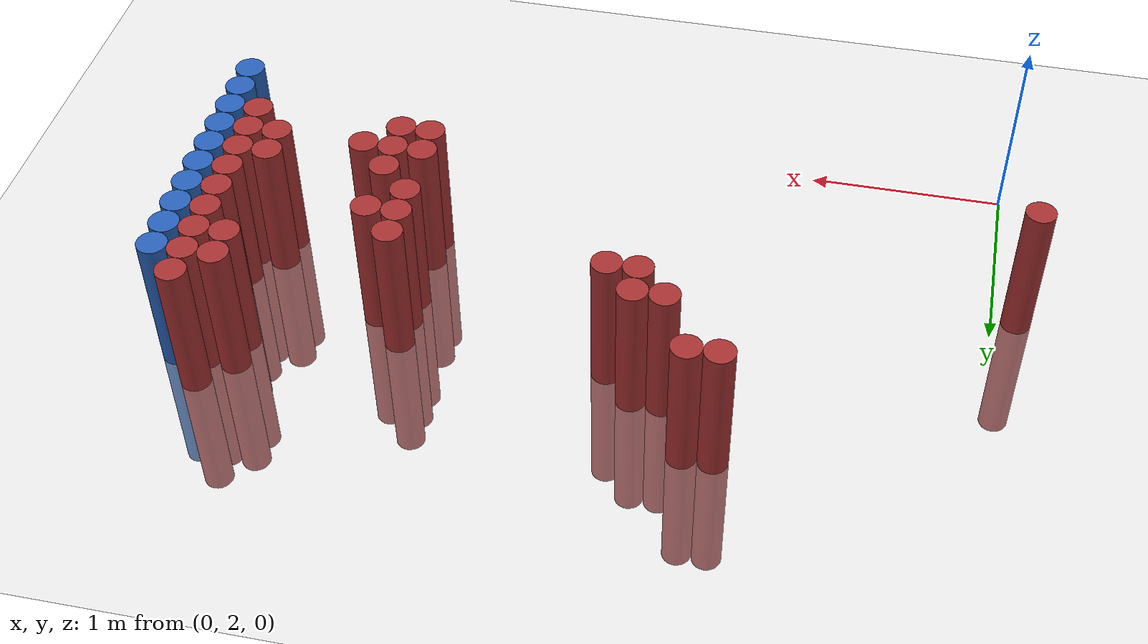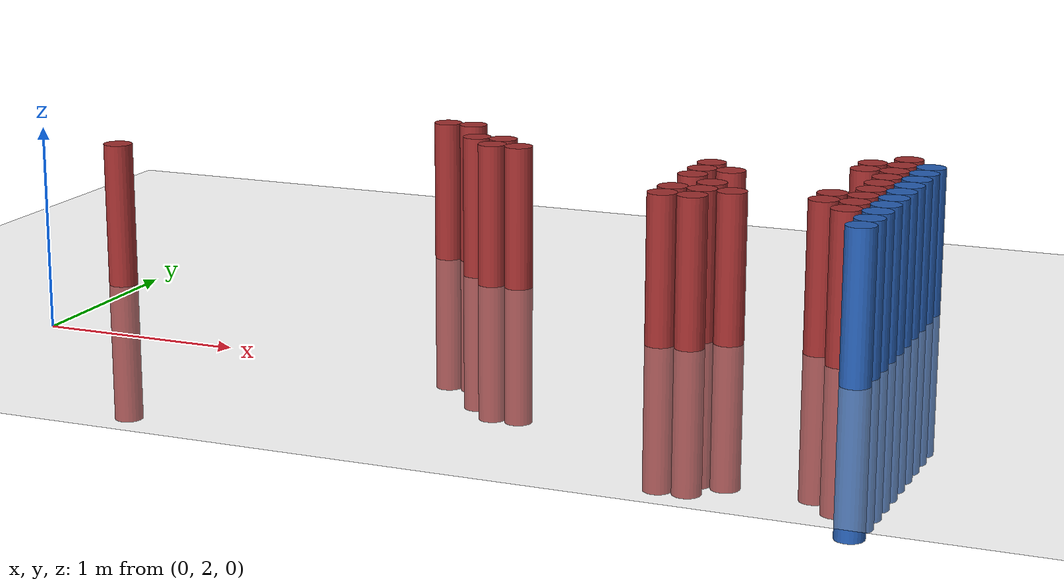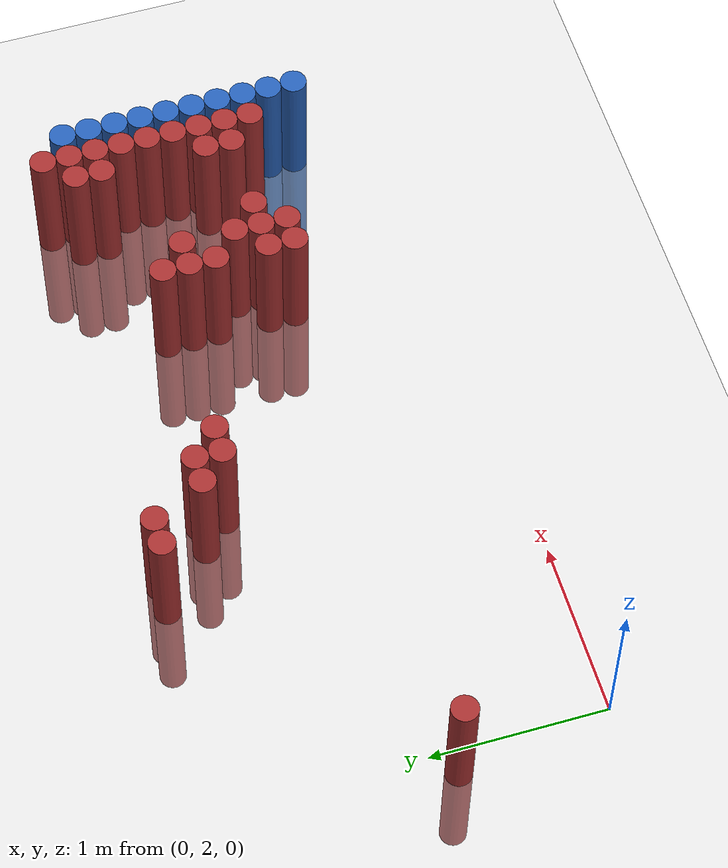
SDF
<sdf version="1.6">
 <world name="default">
  <model name="ground_plane">
   <static>1</static>
   <link name="link">
    <collision name="collision">
     <geometry><plane><normal>0 0 1</normal><size>100 100</size></plane></geometry>
     <surface><friction><ode><mu>100</mu><mu2>50</mu2></ode></friction></surface>
    </collision>
    <visual name="visual">
     <cast_shadows>0</cast_shadows>
     <geometry><plane><normal>0 0 1</normal><size>100 100</size></plane></geometry>
     <material>
      <script><uri>file://media/materials/scripts/gazebo.material</uri><name>Gazebo/Grey</name></script>
     </material>
    </visual>
   </link>
  </model>
  <model name="unit_cylinder_148">
   <static>1</static>
   <pose>3.925000 2.575000 0.000000 0.000000 0.000000 0.000000</pose>
   <link name="link">
    <inertial>
     <mass>1</mass>
     <inertia><ixx>0.145833</ixx><ixy>0</ixy><ixz>0</ixz><iyy>0.145833</iyy><iyz>0</iyz><izz>0.125</izz></inertia>
    </inertial>
    <collision name="collision">
     <geometry><cylinder><radius>0.075000</radius><length>1.5</length></cylinder></geometry>
    </collision>
    <visual name="visual">
     <geometry><cylinder><radius>0.075000</radius><length>1.5</length></cylinder></geometry>
     <material>
      <ambient>0.152000 0.379000 0.720000 1</ambient>
      <diffuse>0.152000 0.379000 0.720000 1</diffuse>
     </material>
     <material>
      <script><name>Gazebo/Grey</name><uri>file://media/materials/scripts/gazebo.material</uri></script>
     </material>
    </visual>
   </link>
  </model>
  <model name="unit_cylinder_150">
   <static>1</static>
   <pose>3.925000 2.725000 0.000000 0.000000 0.000000 0.000000</pose>
   <link name="link">
    <inertial>
     <mass>1</mass>
     <inertia><ixx>0.145833</ixx><ixy>0</ixy><ixz>0</ixz><iyy>0.145833</iyy><iyz>0</iyz><izz>0.125</izz></inertia>
    </inertial>
    <collision name="collision">
     <geometry><cylinder><radius>0.075000</radius><length>1.5</length></cylinder></geometry>
    </collision>
    <visual name="visual">
     <geometry><cylinder><radius>0.075000</radius><length>1.5</length></cylinder></geometry>
     <material>
      <ambient>0.152000 0.379000 0.720000 1</ambient>
      <diffuse>0.152000 0.379000 0.720000 1</diffuse>
     </material>
     <material>
      <script><name>Gazebo/Grey</name><uri>file://media/materials/scripts/gazebo.material</uri></script>
     </material>
    </visual>
   </link>
  </model>
  <model name="unit_cylinder_152">
   <static>1</static>
   <pose>3.925000 2.875000 0.000000 0.000000 0.000000 0.000000</pose>
   <link name="link">
    <inertial>
     <mass>1</mass>
     <inertia><ixx>0.145833</ixx><ixy>0</ixy><ixz>0</ixz><iyy>0.145833</iyy><iyz>0</iyz><izz>0.125</izz></inertia>
    </inertial>
    <collision name="collision">
     <geometry><cylinder><radius>0.075000</radius><length>1.5</length></cylinder></geometry>
    </collision>
    <visual name="visual">
     <geometry><cylinder><radius>0.075000</radius><length>1.5</length></cylinder></geometry>
     <material>
      <ambient>0.152000 0.379000 0.720000 1</ambient>
      <diffuse>0.152000 0.379000 0.720000 1</diffuse>
     </material>
     <material>
      <script><name>Gazebo/Grey</name><uri>file://media/materials/scripts/gazebo.material</uri></script>
     </material>
    </visual>
   </link>
  </model>
  <model name="unit_cylinder_154">
   <static>1</static>
   <pose>3.925000 3.025000 0.000000 0.000000 0.000000 0.000000</pose>
   <link name="link">
    <inertial>
     <mass>1</mass>
     <inertia><ixx>0.145833</ixx><ixy>0</ixy><ixz>0</ixz><iyy>0.145833</iyy><iyz>0</iyz><izz>0.125</izz></inertia>
    </inertial>
    <collision name="collision">
     <geometry><cylinder><radius>0.075000</radius><length>1.5</length></cylinder></geometry>
    </collision>
    <visual name="visual">
     <geometry><cylinder><radius>0.075000</radius><length>1.5</length></cylinder></geometry>
     <material>
      <ambient>0.152000 0.379000 0.720000 1</ambient>
      <diffuse>0.152000 0.379000 0.720000 1</diffuse>
     </material>
     <material>
      <script><name>Gazebo/Grey</name><uri>file://media/materials/scripts/gazebo.material</uri></script>
     </material>
    </visual>
   </link>
  </model>
  <model name="unit_cylinder_156">
   <static>1</static>
   <pose>3.925000 3.175000 0.000000 0.000000 0.000000 0.000000</pose>
   <link name="link">
    <inertial>
     <mass>1</mass>
     <inertia><ixx>0.145833</ixx><ixy>0</ixy><ixz>0</ixz><iyy>0.145833</iyy><iyz>0</iyz><izz>0.125</izz></inertia>
    </inertial>
    <collision name="collision">
     <geometry><cylinder><radius>0.075000</radius><length>1.5</length></cylinder></geometry>
    </collision>
    <visual name="visual">
     <geometry><cylinder><radius>0.075000</radius><length>1.5</length></cylinder></geometry>
     <material>
      <ambient>0.152000 0.379000 0.720000 1</ambient>
      <diffuse>0.152000 0.379000 0.720000 1</diffuse>
     </material>
     <material>
      <script><name>Gazebo/Grey</name><uri>file://media/materials/scripts/gazebo.material</uri></script>
     </material>
    </visual>
   </link>
  </model>
  <model name="unit_cylinder_158">
   <static>1</static>
   <pose>3.925000 3.325000 0.000000 0.000000 0.000000 0.000000</pose>
   <link name="link">
    <inertial>
     <mass>1</mass>
     <inertia><ixx>0.145833</ixx><ixy>0</ixy><ixz>0</ixz><iyy>0.145833</iyy><iyz>0</iyz><izz>0.125</izz></inertia>
    </inertial>
    <collision name="collision">
     <geometry><cylinder><radius>0.075000</radius><length>1.5</length></cylinder></geometry>
    </collision>
    <visual name="visual">
     <geometry><cylinder><radius>0.075000</radius><length>1.5</length></cylinder></geometry>
     <material>
      <ambient>0.152000 0.379000 0.720000 1</ambient>
      <diffuse>0.152000 0.379000 0.720000 1</diffuse>
     </material>
     <material>
      <script><name>Gazebo/Grey</name><uri>file://media/materials/scripts/gazebo.material</uri></script>
     </material>
    </visual>
   </link>
  </model>
  <model name="unit_cylinder_160">
   <static>1</static>
   <pose>3.925000 3.475000 0.000000 0.000000 0.000000 0.000000</pose>
   <link name="link">
    <inertial>
     <mass>1</mass>
     <inertia><ixx>0.145833</ixx><ixy>0</ixy><ixz>0</ixz><iyy>0.145833</iyy><iyz>0</iyz><izz>0.125</izz></inertia>
    </inertial>
    <collision name="collision">
     <geometry><cylinder><radius>0.075000</radius><length>1.5</length></cylinder></geometry>
    </collision>
    <visual name="visual">
     <geometry><cylinder><radius>0.075000</radius><length>1.5</length></cylinder></geometry>
     <material>
      <ambient>0.152000 0.379000 0.720000 1</ambient>
      <diffuse>0.152000 0.379000 0.720000 1</diffuse>
     </material>
     <material>
      <script><name>Gazebo/Grey</name><uri>file://media/materials/scripts/gazebo.material</uri></script>
     </material>
    </visual>
   </link>
  </model>
  <model name="unit_cylinder_162">
   <static>1</static>
   <pose>3.925000 3.625000 0.000000 0.000000 0.000000 0.000000</pose>
   <link name="link">
    <inertial>
     <mass>1</mass>
     <inertia><ixx>0.145833</ixx><ixy>0</ixy><ixz>0</ixz><iyy>0.145833</iyy><iyz>0</iyz><izz>0.125</izz></inertia>
    </inertial>
    <collision name="collision">
     <geometry><cylinder><radius>0.075000</radius><length>1.5</length></cylinder></geometry>
    </collision>
    <visual name="visual">
     <geometry><cylinder><radius>0.075000</radius><length>1.5</length></cylinder></geometry>
     <material>
      <ambient>0.152000 0.379000 0.720000 1</ambient>
      <diffuse>0.152000 0.379000 0.720000 1</diffuse>
     </material>
     <material>
      <script><name>Gazebo/Grey</name><uri>file://media/materials/scripts/gazebo.material</uri></script>
     </material>
    </visual>
   </link>
  </model>
  <model name="unit_cylinder_164">
   <static>1</static>
   <pose>3.925000 3.775000 0.000000 0.000000 0.000000 0.000000</pose>
   <link name="link">
    <inertial>
     <mass>1</mass>
     <inertia><ixx>0.145833</ixx><ixy>0</ixy><ixz>0</ixz><iyy>0.145833</iyy><iyz>0</iyz><izz>0.125</izz></inertia>
    </inertial>
    <collision name="collision">
     <geometry><cylinder><radius>0.075000</radius><length>1.5</length></cylinder></geometry>
    </collision>
    <visual name="visual">
     <geometry><cylinder><radius>0.075000</radius><length>1.5</length></cylinder></geometry>
     <material>
      <ambient>0.152000 0.379000 0.720000 1</ambient>
      <diffuse>0.152000 0.379000 0.720000 1</diffuse>
     </material>
     <material>
      <script><name>Gazebo/Grey</name><uri>file://media/materials/scripts/gazebo.material</uri></script>
     </material>
    </visual>
   </link>
  </model>
  <model name="unit_cylinder_166">
   <static>1</static>
   <pose>3.925000 3.925000 0.000000 0.000000 0.000000 0.000000</pose>
   <link name="link">
    <inertial>
     <mass>1</mass>
     <inertia><ixx>0.145833</ixx><ixy>0</ixy><ixz>0</ixz><iyy>0.145833</iyy><iyz>0</iyz><izz>0.125</izz></inertia>
    </inertial>
    <collision name="collision">
     <geometry><cylinder><radius>0.075000</radius><length>1.5</length></cylinder></geometry>
    </collision>
    <visual name="visual">
     <geometry><cylinder><radius>0.075000</radius><length>1.5</length></cylinder></geometry>
     <material>
      <ambient>0.152000 0.379000 0.720000 1</ambient>
      <diffuse>0.152000 0.379000 0.720000 1</diffuse>
     </material>
     <material>
      <script><name>Gazebo/Grey</name><uri>file://media/materials/scripts/gazebo.material</uri></script>
     </material>
    </visual>
   </link>
  </model>
  <model name="unit_cylinder_383">
   <static>1</static>
   <pose>-0.125000 2.875000 0.000000 0.000000 0.000000 0.000000</pose>
   <link name="link">
    <inertial>
     <mass>1</mass>
     <inertia><ixx>0.145833</ixx><ixy>0</ixy><ixz>0</ixz><iyy>0.145833</iyy><iyz>0</iyz><izz>0.125</izz></inertia>
    </inertial>
    <collision name="collision">
     <geometry><cylinder><radius>0.075000</radius><length>1.5</length></cylinder></geometry>
    </collision>
    <visual name="visual">
     <geometry><cylinder><radius>0.075000</radius><length>1.5</length></cylinder></geometry>
     <material>
      <ambient>0.648000 0.192000 0.192000 1</ambient>
      <diffuse>0.648000 0.192000 0.192000 1</diffuse>
     </material>
     <material>
      <script><name>Gazebo/Grey</name><uri>file://media/materials/scripts/gazebo.material</uri></script>
     </material>
    </visual>
   </link>
  </model>
  <model name="unit_cylinder_399">
   <static>1</static>
   <pose>1.225000 4.075000 0.000000 0.000000 0.000000 0.000000</pose>
   <link name="link">
    <inertial>
     <mass>1</mass>
     <inertia><ixx>0.145833</ixx><ixy>0</ixy><ixz>0</ixz><iyy>0.145833</iyy><iyz>0</iyz><izz>0.125</izz></inertia>
    </inertial>
    <collision name="collision">
     <geometry><cylinder><radius>0.075000</radius><length>1.5</length></cylinder></geometry>
    </collision>
    <visual name="visual">
     <geometry><cylinder><radius>0.075000</radius><length>1.5</length></cylinder></geometry>
     <material>
      <ambient>0.648000 0.192000 0.192000 1</ambient>
      <diffuse>0.648000 0.192000 0.192000 1</diffuse>
     </material>
     <material>
      <script><name>Gazebo/Grey</name><uri>file://media/materials/scripts/gazebo.material</uri></script>
     </material>
    </visual>
   </link>
  </model>
  <model name="unit_cylinder_403">
   <static>1</static>
   <pose>1.375000 4.075000 0.000000 0.000000 0.000000 0.000000</pose>
   <link name="link">
    <inertial>
     <mass>1</mass>
     <inertia><ixx>0.145833</ixx><ixy>0</ixy><ixz>0</ixz><iyy>0.145833</iyy><iyz>0</iyz><izz>0.125</izz></inertia>
    </inertial>
    <collision name="collision">
     <geometry><cylinder><radius>0.075000</radius><length>1.5</length></cylinder></geometry>
    </collision>
    <visual name="visual">
     <geometry><cylinder><radius>0.075000</radius><length>1.5</length></cylinder></geometry>
     <material>
      <ambient>0.648000 0.192000 0.192000 1</ambient>
      <diffuse>0.648000 0.192000 0.192000 1</diffuse>
     </material>
     <material>
      <script><name>Gazebo/Grey</name><uri>file://media/materials/scripts/gazebo.material</uri></script>
     </material>
    </visual>
   </link>
  </model>
  <model name="unit_cylinder_408">
   <static>1</static>
   <pose>1.525000 3.775000 0.000000 0.000000 0.000000 0.000000</pose>
   <link name="link">
    <inertial>
     <mass>1</mass>
     <inertia><ixx>0.145833</ixx><ixy>0</ixy><ixz>0</ixz><iyy>0.145833</iyy><iyz>0</iyz><izz>0.125</izz></inertia>
    </inertial>
    <collision name="collision">
     <geometry><cylinder><radius>0.075000</radius><length>1.5</length></cylinder></geometry>
    </collision>
    <visual name="visual">
     <geometry><cylinder><radius>0.075000</radius><length>1.5</length></cylinder></geometry>
     <material>
      <ambient>0.648000 0.192000 0.192000 1</ambient>
      <diffuse>0.648000 0.192000 0.192000 1</diffuse>
     </material>
     <material>
      <script><name>Gazebo/Grey</name><uri>file://media/materials/scripts/gazebo.material</uri></script>
     </material>
    </visual>
   </link>
  </model>
  <model name="unit_cylinder_411">
   <static>1</static>
   <pose>1.675000 3.625000 0.000000 0.000000 0.000000 0.000000</pose>
   <link name="link">
    <inertial>
     <mass>1</mass>
     <inertia><ixx>0.145833</ixx><ixy>0</ixy><ixz>0</ixz><iyy>0.145833</iyy><iyz>0</iyz><izz>0.125</izz></inertia>
    </inertial>
    <collision name="collision">
     <geometry><cylinder><radius>0.075000</radius><length>1.5</length></cylinder></geometry>
    </collision>
    <visual name="visual">
     <geometry><cylinder><radius>0.075000</radius><length>1.5</length></cylinder></geometry>
     <material>
      <ambient>0.648000 0.192000 0.192000 1</ambient>
      <diffuse>0.648000 0.192000 0.192000 1</diffuse>
     </material>
     <material>
      <script><name>Gazebo/Grey</name><uri>file://media/materials/scripts/gazebo.material</uri></script>
     </material>
    </visual>
   </link>
  </model>
  <model name="unit_cylinder_412">
   <static>1</static>
   <pose>1.675000 3.775000 0.000000 0.000000 0.000000 0.000000</pose>
   <link name="link">
    <inertial>
     <mass>1</mass>
     <inertia><ixx>0.145833</ixx><ixy>0</ixy><ixz>0</ixz><iyy>0.145833</iyy><iyz>0</iyz><izz>0.125</izz></inertia>
    </inertial>
    <collision name="collision">
     <geometry><cylinder><radius>0.075000</radius><length>1.5</length></cylinder></geometry>
    </collision>
    <visual name="visual">
     <geometry><cylinder><radius>0.075000</radius><length>1.5</length></cylinder></geometry>
     <material>
      <ambient>0.648000 0.192000 0.192000 1</ambient>
      <diffuse>0.648000 0.192000 0.192000 1</diffuse>
     </material>
     <material>
      <script><name>Gazebo/Grey</name><uri>file://media/materials/scripts/gazebo.material</uri></script>
     </material>
    </visual>
   </link>
  </model>
  <model name="unit_cylinder_416">
   <static>1</static>
   <pose>1.825000 3.625000 0.000000 0.000000 0.000000 0.000000</pose>
   <link name="link">
    <inertial>
     <mass>1</mass>
     <inertia><ixx>0.145833</ixx><ixy>0</ixy><ixz>0</ixz><iyy>0.145833</iyy><iyz>0</iyz><izz>0.125</izz></inertia>
    </inertial>
    <collision name="collision">
     <geometry><cylinder><radius>0.075000</radius><length>1.5</length></cylinder></geometry>
    </collision>
    <visual name="visual">
     <geometry><cylinder><radius>0.075000</radius><length>1.5</length></cylinder></geometry>
     <material>
      <ambient>0.648000 0.192000 0.192000 1</ambient>
      <diffuse>0.648000 0.192000 0.192000 1</diffuse>
     </material>
     <material>
      <script><name>Gazebo/Grey</name><uri>file://media/materials/scripts/gazebo.material</uri></script>
     </material>
    </visual>
   </link>
  </model>
  <model name="unit_cylinder_436">
   <static>1</static>
   <pose>2.875000 2.875000 0.000000 0.000000 0.000000 0.000000</pose>
   <link name="link">
    <inertial>
     <mass>1</mass>
     <inertia><ixx>0.145833</ixx><ixy>0</ixy><ixz>0</ixz><iyy>0.145833</iyy><iyz>0</iyz><izz>0.125</izz></inertia>
    </inertial>
    <collision name="collision">
     <geometry><cylinder><radius>0.075000</radius><length>1.5</length></cylinder></geometry>
    </collision>
    <visual name="visual">
     <geometry><cylinder><radius>0.075000</radius><length>1.5</length></cylinder></geometry>
     <material>
      <ambient>0.648000 0.192000 0.192000 1</ambient>
      <diffuse>0.648000 0.192000 0.192000 1</diffuse>
     </material>
     <material>
      <script><name>Gazebo/Grey</name><uri>file://media/materials/scripts/gazebo.material</uri></script>
     </material>
    </visual>
   </link>
  </model>
  <model name="unit_cylinder_437">
   <static>1</static>
   <pose>2.875000 3.025000 0.000000 0.000000 0.000000 0.000000</pose>
   <link name="link">
    <inertial>
     <mass>1</mass>
     <inertia><ixx>0.145833</ixx><ixy>0</ixy><ixz>0</ixz><iyy>0.145833</iyy><iyz>0</iyz><izz>0.125</izz></inertia>
    </inertial>
    <collision name="collision">
     <geometry><cylinder><radius>0.075000</radius><length>1.5</length></cylinder></geometry>
    </collision>
    <visual name="visual">
     <geometry><cylinder><radius>0.075000</radius><length>1.5</length></cylinder></geometry>
     <material>
      <ambient>0.648000 0.192000 0.192000 1</ambient>
      <diffuse>0.648000 0.192000 0.192000 1</diffuse>
     </material>
     <material>
      <script><name>Gazebo/Grey</name><uri>file://media/materials/scripts/gazebo.material</uri></script>
     </material>
    </visual>
   </link>
  </model>
  <model name="unit_cylinder_438">
   <static>1</static>
   <pose>2.875000 3.325000 0.000000 0.000000 0.000000 0.000000</pose>
   <link name="link">
    <inertial>
     <mass>1</mass>
     <inertia><ixx>0.145833</ixx><ixy>0</ixy><ixz>0</ixz><iyy>0.145833</iyy><iyz>0</iyz><izz>0.125</izz></inertia>
    </inertial>
    <collision name="collision">
     <geometry><cylinder><radius>0.075000</radius><length>1.5</length></cylinder></geometry>
    </collision>
    <visual name="visual">
     <geometry><cylinder><radius>0.075000</radius><length>1.5</length></cylinder></geometry>
     <material>
      <ambient>0.648000 0.192000 0.192000 1</ambient>
      <diffuse>0.648000 0.192000 0.192000 1</diffuse>
     </material>
     <material>
      <script><name>Gazebo/Grey</name><uri>file://media/materials/scripts/gazebo.material</uri></script>
     </material>
    </visual>
   </link>
  </model>
  <model name="unit_cylinder_439">
   <static>1</static>
   <pose>2.875000 3.475000 0.000000 0.000000 0.000000 0.000000</pose>
   <link name="link">
    <inertial>
     <mass>1</mass>
     <inertia><ixx>0.145833</ixx><ixy>0</ixy><ixz>0</ixz><iyy>0.145833</iyy><iyz>0</iyz><izz>0.125</izz></inertia>
    </inertial>
    <collision name="collision">
     <geometry><cylinder><radius>0.075000</radius><length>1.5</length></cylinder></geometry>
    </collision>
    <visual name="visual">
     <geometry><cylinder><radius>0.075000</radius><length>1.5</length></cylinder></geometry>
     <material>
      <ambient>0.648000 0.192000 0.192000 1</ambient>
      <diffuse>0.648000 0.192000 0.192000 1</diffuse>
     </material>
     <material>
      <script><name>Gazebo/Grey</name><uri>file://media/materials/scripts/gazebo.material</uri></script>
     </material>
    </visual>
   </link>
  </model>
  <model name="unit_cylinder_440">
   <static>1</static>
   <pose>2.875000 3.625000 0.000000 0.000000 0.000000 0.000000</pose>
   <link name="link">
    <inertial>
     <mass>1</mass>
     <inertia><ixx>0.145833</ixx><ixy>0</ixy><ixz>0</ixz><iyy>0.145833</iyy><iyz>0</iyz><izz>0.125</izz></inertia>
    </inertial>
    <collision name="collision">
     <geometry><cylinder><radius>0.075000</radius><length>1.5</length></cylinder></geometry>
    </collision>
    <visual name="visual">
     <geometry><cylinder><radius>0.075000</radius><length>1.5</length></cylinder></geometry>
     <material>
      <ambient>0.648000 0.192000 0.192000 1</ambient>
      <diffuse>0.648000 0.192000 0.192000 1</diffuse>
     </material>
     <material>
      <script><name>Gazebo/Grey</name><uri>file://media/materials/scripts/gazebo.material</uri></script>
     </material>
    </visual>
   </link>
  </model>
  <model name="unit_cylinder_445">
   <static>1</static>
   <pose>3.025000 2.875000 0.000000 0.000000 0.000000 0.000000</pose>
   <link name="link">
    <inertial>
     <mass>1</mass>
     <inertia><ixx>0.145833</ixx><ixy>0</ixy><ixz>0</ixz><iyy>0.145833</iyy><iyz>0</iyz><izz>0.125</izz></inertia>
    </inertial>
    <collision name="collision">
     <geometry><cylinder><radius>0.075000</radius><length>1.5</length></cylinder></geometry>
    </collision>
    <visual name="visual">
     <geometry><cylinder><radius>0.075000</radius><length>1.5</length></cylinder></geometry>
     <material>
      <ambient>0.648000 0.192000 0.192000 1</ambient>
      <diffuse>0.648000 0.192000 0.192000 1</diffuse>
     </material>
     <material>
      <script><name>Gazebo/Grey</name><uri>file://media/materials/scripts/gazebo.material</uri></script>
     </material>
    </visual>
   </link>
  </model>
  <model name="unit_cylinder_446">
   <static>1</static>
   <pose>3.025000 3.025000 0.000000 0.000000 0.000000 0.000000</pose>
   <link name="link">
    <inertial>
     <mass>1</mass>
     <inertia><ixx>0.145833</ixx><ixy>0</ixy><ixz>0</ixz><iyy>0.145833</iyy><iyz>0</iyz><izz>0.125</izz></inertia>
    </inertial>
    <collision name="collision">
     <geometry><cylinder><radius>0.075000</radius><length>1.5</length></cylinder></geometry>
    </collision>
    <visual name="visual">
     <geometry><cylinder><radius>0.075000</radius><length>1.5</length></cylinder></geometry>
     <material>
      <ambient>0.648000 0.192000 0.192000 1</ambient>
      <diffuse>0.648000 0.192000 0.192000 1</diffuse>
     </material>
     <material>
      <script><name>Gazebo/Grey</name><uri>file://media/materials/scripts/gazebo.material</uri></script>
     </material>
    </visual>
   </link>
  </model>
  <model name="unit_cylinder_447">
   <static>1</static>
   <pose>3.025000 3.175000 0.000000 0.000000 0.000000 0.000000</pose>
   <link name="link">
    <inertial>
     <mass>1</mass>
     <inertia><ixx>0.145833</ixx><ixy>0</ixy><ixz>0</ixz><iyy>0.145833</iyy><iyz>0</iyz><izz>0.125</izz></inertia>
    </inertial>
    <collision name="collision">
     <geometry><cylinder><radius>0.075000</radius><length>1.5</length></cylinder></geometry>
    </collision>
    <visual name="visual">
     <geometry><cylinder><radius>0.075000</radius><length>1.5</length></cylinder></geometry>
     <material>
      <ambient>0.648000 0.192000 0.192000 1</ambient>
      <diffuse>0.648000 0.192000 0.192000 1</diffuse>
     </material>
     <material>
      <script><name>Gazebo/Grey</name><uri>file://media/materials/scripts/gazebo.material</uri></script>
     </material>
    </visual>
   </link>
  </model>
  <model name="unit_cylinder_448">
   <static>1</static>
   <pose>3.025000 3.475000 0.000000 0.000000 0.000000 0.000000</pose>
   <link name="link">
    <inertial>
     <mass>1</mass>
     <inertia><ixx>0.145833</ixx><ixy>0</ixy><ixz>0</ixz><iyy>0.145833</iyy><iyz>0</iyz><izz>0.125</izz></inertia>
    </inertial>
    <collision name="collision">
     <geometry><cylinder><radius>0.075000</radius><length>1.5</length></cylinder></geometry>
    </collision>
    <visual name="visual">
     <geometry><cylinder><radius>0.075000</radius><length>1.5</length></cylinder></geometry>
     <material>
      <ambient>0.648000 0.192000 0.192000 1</ambient>
      <diffuse>0.648000 0.192000 0.192000 1</diffuse>
     </material>
     <material>
      <script><name>Gazebo/Grey</name><uri>file://media/materials/scripts/gazebo.material</uri></script>
     </material>
    </visual>
   </link>
  </model>
  <model name="unit_cylinder_450">
   <static>1</static>
   <pose>3.175000 3.025000 0.000000 0.000000 0.000000 0.000000</pose>
   <link name="link">
    <inertial>
     <mass>1</mass>
     <inertia><ixx>0.145833</ixx><ixy>0</ixy><ixz>0</ixz><iyy>0.145833</iyy><iyz>0</iyz><izz>0.125</izz></inertia>
    </inertial>
    <collision name="collision">
     <geometry><cylinder><radius>0.075000</radius><length>1.5</length></cylinder></geometry>
    </collision>
    <visual name="visual">
     <geometry><cylinder><radius>0.075000</radius><length>1.5</length></cylinder></geometry>
     <material>
      <ambient>0.648000 0.192000 0.192000 1</ambient>
      <diffuse>0.648000 0.192000 0.192000 1</diffuse>
     </material>
     <material>
      <script><name>Gazebo/Grey</name><uri>file://media/materials/scripts/gazebo.material</uri></script>
     </material>
    </visual>
   </link>
  </model>
  <model name="unit_cylinder_463">
   <static>1</static>
   <pose>3.625000 3.025000 0.000000 0.000000 0.000000 0.000000</pose>
   <link name="link">
    <inertial>
     <mass>1</mass>
     <inertia><ixx>0.145833</ixx><ixy>0</ixy><ixz>0</ixz><iyy>0.145833</iyy><iyz>0</iyz><izz>0.125</izz></inertia>
    </inertial>
    <collision name="collision">
     <geometry><cylinder><radius>0.075000</radius><length>1.5</length></cylinder></geometry>
    </collision>
    <visual name="visual">
     <geometry><cylinder><radius>0.075000</radius><length>1.5</length></cylinder></geometry>
     <material>
      <ambient>0.648000 0.192000 0.192000 1</ambient>
      <diffuse>0.648000 0.192000 0.192000 1</diffuse>
     </material>
     <material>
      <script><name>Gazebo/Grey</name><uri>file://media/materials/scripts/gazebo.material</uri></script>
     </material>
    </visual>
   </link>
  </model>
  <model name="unit_cylinder_464">
   <static>1</static>
   <pose>3.625000 3.175000 0.000000 0.000000 0.000000 0.000000</pose>
   <link name="link">
    <inertial>
     <mass>1</mass>
     <inertia><ixx>0.145833</ixx><ixy>0</ixy><ixz>0</ixz><iyy>0.145833</iyy><iyz>0</iyz><izz>0.125</izz></inertia>
    </inertial>
    <collision name="collision">
     <geometry><cylinder><radius>0.075000</radius><length>1.5</length></cylinder></geometry>
    </collision>
    <visual name="visual">
     <geometry><cylinder><radius>0.075000</radius><length>1.5</length></cylinder></geometry>
     <material>
      <ambient>0.648000 0.192000 0.192000 1</ambient>
      <diffuse>0.648000 0.192000 0.192000 1</diffuse>
     </material>
     <material>
      <script><name>Gazebo/Grey</name><uri>file://media/materials/scripts/gazebo.material</uri></script>
     </material>
    </visual>
   </link>
  </model>
  <model name="unit_cylinder_465">
   <static>1</static>
   <pose>3.625000 3.775000 0.000000 0.000000 0.000000 0.000000</pose>
   <link name="link">
    <inertial>
     <mass>1</mass>
     <inertia><ixx>0.145833</ixx><ixy>0</ixy><ixz>0</ixz><iyy>0.145833</iyy><iyz>0</iyz><izz>0.125</izz></inertia>
    </inertial>
    <collision name="collision">
     <geometry><cylinder><radius>0.075000</radius><length>1.5</length></cylinder></geometry>
    </collision>
    <visual name="visual">
     <geometry><cylinder><radius>0.075000</radius><length>1.5</length></cylinder></geometry>
     <material>
      <ambient>0.648000 0.192000 0.192000 1</ambient>
      <diffuse>0.648000 0.192000 0.192000 1</diffuse>
     </material>
     <material>
      <script><name>Gazebo/Grey</name><uri>file://media/materials/scripts/gazebo.material</uri></script>
     </material>
    </visual>
   </link>
  </model>
  <model name="unit_cylinder_466">
   <static>1</static>
   <pose>3.625000 3.925000 0.000000 0.000000 0.000000 0.000000</pose>
   <link name="link">
    <inertial>
     <mass>1</mass>
     <inertia><ixx>0.145833</ixx><ixy>0</ixy><ixz>0</ixz><iyy>0.145833</iyy><iyz>0</iyz><izz>0.125</izz></inertia>
    </inertial>
    <collision name="collision">
     <geometry><cylinder><radius>0.075000</radius><length>1.5</length></cylinder></geometry>
    </collision>
    <visual name="visual">
     <geometry><cylinder><radius>0.075000</radius><length>1.5</length></cylinder></geometry>
     <material>
      <ambient>0.648000 0.192000 0.192000 1</ambient>
      <diffuse>0.648000 0.192000 0.192000 1</diffuse>
     </material>
     <material>
      <script><name>Gazebo/Grey</name><uri>file://media/materials/scripts/gazebo.material</uri></script>
     </material>
    </visual>
   </link>
  </model>
  <model name="unit_cylinder_485">
   <static>1</static>
   <pose>3.775000 2.875000 0.000000 0.000000 0.000000 0.000000</pose>
   <link name="link">
    <inertial>
     <mass>1</mass>
     <inertia><ixx>0.145833</ixx><ixy>0</ixy><ixz>0</ixz><iyy>0.145833</iyy><iyz>0</iyz><izz>0.125</izz></inertia>
    </inertial>
    <collision name="collision">
     <geometry><cylinder><radius>0.075000</radius><length>1.5</length></cylinder></geometry>
    </collision>
    <visual name="visual">
     <geometry><cylinder><radius>0.075000</radius><length>1.5</length></cylinder></geometry>
     <material>
      <ambient>0.648000 0.192000 0.192000 1</ambient>
      <diffuse>0.648000 0.192000 0.192000 1</diffuse>
     </material>
     <material>
      <script><name>Gazebo/Grey</name><uri>file://media/materials/scripts/gazebo.material</uri></script>
     </material>
    </visual>
   </link>
  </model>
  <model name="unit_cylinder_486">
   <static>1</static>
   <pose>3.775000 3.025000 0.000000 0.000000 0.000000 0.000000</pose>
   <link name="link">
    <inertial>
     <mass>1</mass>
     <inertia><ixx>0.145833</ixx><ixy>0</ixy><ixz>0</ixz><iyy>0.145833</iyy><iyz>0</iyz><izz>0.125</izz></inertia>
    </inertial>
    <collision name="collision">
     <geometry><cylinder><radius>0.075000</radius><length>1.5</length></cylinder></geometry>
    </collision>
    <visual name="visual">
     <geometry><cylinder><radius>0.075000</radius><length>1.5</length></cylinder></geometry>
     <material>
      <ambient>0.648000 0.192000 0.192000 1</ambient>
      <diffuse>0.648000 0.192000 0.192000 1</diffuse>
     </material>
     <material>
      <script><name>Gazebo/Grey</name><uri>file://media/materials/scripts/gazebo.material</uri></script>
     </material>
    </visual>
   </link>
  </model>
  <model name="unit_cylinder_487">
   <static>1</static>
   <pose>3.775000 3.175000 0.000000 0.000000 0.000000 0.000000</pose>
   <link name="link">
    <inertial>
     <mass>1</mass>
     <inertia><ixx>0.145833</ixx><ixy>0</ixy><ixz>0</ixz><iyy>0.145833</iyy><iyz>0</iyz><izz>0.125</izz></inertia>
    </inertial>
    <collision name="collision">
     <geometry><cylinder><radius>0.075000</radius><length>1.5</length></cylinder></geometry>
    </collision>
    <visual name="visual">
     <geometry><cylinder><radius>0.075000</radius><length>1.5</length></cylinder></geometry>
     <material>
      <ambient>0.648000 0.192000 0.192000 1</ambient>
      <diffuse>0.648000 0.192000 0.192000 1</diffuse>
     </material>
     <material>
      <script><name>Gazebo/Grey</name><uri>file://media/materials/scripts/gazebo.material</uri></script>
     </material>
    </visual>
   </link>
  </model>
  <model name="unit_cylinder_488">
   <static>1</static>
   <pose>3.775000 3.325000 0.000000 0.000000 0.000000 0.000000</pose>
   <link name="link">
    <inertial>
     <mass>1</mass>
     <inertia><ixx>0.145833</ixx><ixy>0</ixy><ixz>0</ixz><iyy>0.145833</iyy><iyz>0</iyz><izz>0.125</izz></inertia>
    </inertial>
    <collision name="collision">
     <geometry><cylinder><radius>0.075000</radius><length>1.5</length></cylinder></geometry>
    </collision>
    <visual name="visual">
     <geometry><cylinder><radius>0.075000</radius><length>1.5</length></cylinder></geometry>
     <material>
      <ambient>0.648000 0.192000 0.192000 1</ambient>
      <diffuse>0.648000 0.192000 0.192000 1</diffuse>
     </material>
     <material>
      <script><name>Gazebo/Grey</name><uri>file://media/materials/scripts/gazebo.material</uri></script>
     </material>
    </visual>
   </link>
  </model>
  <model name="unit_cylinder_489">
   <static>1</static>
   <pose>3.775000 3.475000 0.000000 0.000000 0.000000 0.000000</pose>
   <link name="link">
    <inertial>
     <mass>1</mass>
     <inertia><ixx>0.145833</ixx><ixy>0</ixy><ixz>0</ixz><iyy>0.145833</iyy><iyz>0</iyz><izz>0.125</izz></inertia>
    </inertial>
    <collision name="collision">
     <geometry><cylinder><radius>0.075000</radius><length>1.5</length></cylinder></geometry>
    </collision>
    <visual name="visual">
     <geometry><cylinder><radius>0.075000</radius><length>1.5</length></cylinder></geometry>
     <material>
      <ambient>0.648000 0.192000 0.192000 1</ambient>
      <diffuse>0.648000 0.192000 0.192000 1</diffuse>
     </material>
     <material>
      <script><name>Gazebo/Grey</name><uri>file://media/materials/scripts/gazebo.material</uri></script>
     </material>
    </visual>
   </link>
  </model>
  <model name="unit_cylinder_490">
   <static>1</static>
   <pose>3.775000 3.625000 0.000000 0.000000 0.000000 0.000000</pose>
   <link name="link">
    <inertial>
     <mass>1</mass>
     <inertia><ixx>0.145833</ixx><ixy>0</ixy><ixz>0</ixz><iyy>0.145833</iyy><iyz>0</iyz><izz>0.125</izz></inertia>
    </inertial>
    <collision name="collision">
     <geometry><cylinder><radius>0.075000</radius><length>1.5</length></cylinder></geometry>
    </collision>
    <visual name="visual">
     <geometry><cylinder><radius>0.075000</radius><length>1.5</length></cylinder></geometry>
     <material>
      <ambient>0.648000 0.192000 0.192000 1</ambient>
      <diffuse>0.648000 0.192000 0.192000 1</diffuse>
     </material>
     <material>
      <script><name>Gazebo/Grey</name><uri>file://media/materials/scripts/gazebo.material</uri></script>
     </material>
    </visual>
   </link>
  </model>
  <model name="unit_cylinder_491">
   <static>1</static>
   <pose>3.775000 3.775000 0.000000 0.000000 0.000000 0.000000</pose>
   <link name="link">
    <inertial>
     <mass>1</mass>
     <inertia><ixx>0.145833</ixx><ixy>0</ixy><ixz>0</ixz><iyy>0.145833</iyy><iyz>0</iyz><izz>0.125</izz></inertia>
    </inertial>
    <collision name="collision">
     <geometry><cylinder><radius>0.075000</radius><length>1.5</length></cylinder></geometry>
    </collision>
    <visual name="visual">
     <geometry><cylinder><radius>0.075000</radius><length>1.5</length></cylinder></geometry>
     <material>
      <ambient>0.648000 0.192000 0.192000 1</ambient>
      <diffuse>0.648000 0.192000 0.192000 1</diffuse>
     </material>
     <material>
      <script><name>Gazebo/Grey</name><uri>file://media/materials/scripts/gazebo.material</uri></script>
     </material>
    </visual>
   </link>
  </model>
  <model name="unit_cylinder_492">
   <static>1</static>
   <pose>3.775000 3.925000 0.000000 0.000000 0.000000 0.000000</pose>
   <link name="link">
    <inertial>
     <mass>1</mass>
     <inertia><ixx>0.145833</ixx><ixy>0</ixy><ixz>0</ixz><iyy>0.145833</iyy><iyz>0</iyz><izz>0.125</izz></inertia>
    </inertial>
    <collision name="collision">
     <geometry><cylinder><radius>0.075000</radius><length>1.5</length></cylinder></geometry>
    </collision>
    <visual name="visual">
     <geometry><cylinder><radius>0.075000</radius><length>1.5</length></cylinder></geometry>
     <material>
      <ambient>0.648000 0.192000 0.192000 1</ambient>
      <diffuse>0.648000 0.192000 0.192000 1</diffuse>
     </material>
     <material>
      <script><name>Gazebo/Grey</name><uri>file://media/materials/scripts/gazebo.material</uri></script>
     </material>
    </visual>
   </link>
  </model>
  <model name="unit_cylinder_493">
   <static>1</static>
   <pose>3.775000 4.075000 0.000000 0.000000 0.000000 0.000000</pose>
   <link name="link">
    <inertial>
     <mass>1</mass>
     <inertia><ixx>0.145833</ixx><ixy>0</ixy><ixz>0</ixz><iyy>0.145833</iyy><iyz>0</iyz><izz>0.125</izz></inertia>
    </inertial>
    <collision name="collision">
     <geometry><cylinder><radius>0.075000</radius><length>1.5</length></cylinder></geometry>
    </collision>
    <visual name="visual">
     <geometry><cylinder><radius>0.075000</radius><length>1.5</length></cylinder></geometry>
     <material>
      <ambient>0.648000 0.192000 0.192000 1</ambient>
      <diffuse>0.648000 0.192000 0.192000 1</diffuse>
     </material>
     <material>
      <script><name>Gazebo/Grey</name><uri>file://media/materials/scripts/gazebo.material</uri></script>
     </material>
    </visual>
   </link>
  </model>
  <model name="unit_cylinder_528">
   <static>1</static>
   <pose>3.925000 2.575000 0.000000 0.000000 0.000000 0.000000</pose>
   <link name="link">
    <inertial>
     <mass>1</mass>
     <inertia><ixx>0.145833</ixx><ixy>0</ixy><ixz>0</ixz><iyy>0.145833</iyy><iyz>0</iyz><izz>0.125</izz></inertia>
    </inertial>
    <collision name="collision">
     <geometry><cylinder><radius>0.075000</radius><length>1.5</length></cylinder></geometry>
    </collision>
    <visual name="visual">
     <geometry><cylinder><radius>0.075000</radius><length>1.5</length></cylinder></geometry>
     <material>
      <ambient>0.152000 0.379000 0.720000 1</ambient>
      <diffuse>0.152000 0.379000 0.720000 1</diffuse>
     </material>
     <material>
      <script><name>Gazebo/Grey</name><uri>file://media/materials/scripts/gazebo.material</uri></script>
     </material>
    </visual>
   </link>
  </model>
  <model name="unit_cylinder_529">
   <static>1</static>
   <pose>3.925000 2.725000 0.000000 0.000000 0.000000 0.000000</pose>
   <link name="link">
    <inertial>
     <mass>1</mass>
     <inertia><ixx>0.145833</ixx><ixy>0</ixy><ixz>0</ixz><iyy>0.145833</iyy><iyz>0</iyz><izz>0.125</izz></inertia>
    </inertial>
    <collision name="collision">
     <geometry><cylinder><radius>0.075000</radius><length>1.5</length></cylinder></geometry>
    </collision>
    <visual name="visual">
     <geometry><cylinder><radius>0.075000</radius><length>1.5</length></cylinder></geometry>
     <material>
      <ambient>0.152000 0.379000 0.720000 1</ambient>
      <diffuse>0.152000 0.379000 0.720000 1</diffuse>
     </material>
     <material>
      <script><name>Gazebo/Grey</name><uri>file://media/materials/scripts/gazebo.material</uri></script>
     </material>
    </visual>
   </link>
  </model>
  <model name="unit_cylinder_530">
   <static>1</static>
   <pose>3.925000 2.875000 0.000000 0.000000 0.000000 0.000000</pose>
   <link name="link">
    <inertial>
     <mass>1</mass>
     <inertia><ixx>0.145833</ixx><ixy>0</ixy><ixz>0</ixz><iyy>0.145833</iyy><iyz>0</iyz><izz>0.125</izz></inertia>
    </inertial>
    <collision name="collision">
     <geometry><cylinder><radius>0.075000</radius><length>1.5</length></cylinder></geometry>
    </collision>
    <visual name="visual">
     <geometry><cylinder><radius>0.075000</radius><length>1.5</length></cylinder></geometry>
     <material>
      <ambient>0.152000 0.379000 0.720000 1</ambient>
      <diffuse>0.152000 0.379000 0.720000 1</diffuse>
     </material>
     <material>
      <script><name>Gazebo/Grey</name><uri>file://media/materials/scripts/gazebo.material</uri></script>
     </material>
    </visual>
   </link>
  </model>
  <model name="unit_cylinder_531">
   <static>1</static>
   <pose>3.925000 3.025000 0.000000 0.000000 0.000000 0.000000</pose>
   <link name="link">
    <inertial>
     <mass>1</mass>
     <inertia><ixx>0.145833</ixx><ixy>0</ixy><ixz>0</ixz><iyy>0.145833</iyy><iyz>0</iyz><izz>0.125</izz></inertia>
    </inertial>
    <collision name="collision">
     <geometry><cylinder><radius>0.075000</radius><length>1.5</length></cylinder></geometry>
    </collision>
    <visual name="visual">
     <geometry><cylinder><radius>0.075000</radius><length>1.5</length></cylinder></geometry>
     <material>
      <ambient>0.152000 0.379000 0.720000 1</ambient>
      <diffuse>0.152000 0.379000 0.720000 1</diffuse>
     </material>
     <material>
      <script><name>Gazebo/Grey</name><uri>file://media/materials/scripts/gazebo.material</uri></script>
     </material>
    </visual>
   </link>
  </model>
  <model name="unit_cylinder_532">
   <static>1</static>
   <pose>3.925000 3.175000 0.000000 0.000000 0.000000 0.000000</pose>
   <link name="link">
    <inertial>
     <mass>1</mass>
     <inertia><ixx>0.145833</ixx><ixy>0</ixy><ixz>0</ixz><iyy>0.145833</iyy><iyz>0</iyz><izz>0.125</izz></inertia>
    </inertial>
    <collision name="collision">
     <geometry><cylinder><radius>0.075000</radius><length>1.5</length></cylinder></geometry>
    </collision>
    <visual name="visual">
     <geometry><cylinder><radius>0.075000</radius><length>1.5</length></cylinder></geometry>
     <material>
      <ambient>0.152000 0.379000 0.720000 1</ambient>
      <diffuse>0.152000 0.379000 0.720000 1</diffuse>
     </material>
     <material>
      <script><name>Gazebo/Grey</name><uri>file://media/materials/scripts/gazebo.material</uri></script>
     </material>
    </visual>
   </link>
  </model>
  <model name="unit_cylinder_533">
   <static>1</static>
   <pose>3.925000 3.325000 0.000000 0.000000 0.000000 0.000000</pose>
   <link name="link">
    <inertial>
     <mass>1</mass>
     <inertia><ixx>0.145833</ixx><ixy>0</ixy><ixz>0</ixz><iyy>0.145833</iyy><iyz>0</iyz><izz>0.125</izz></inertia>
    </inertial>
    <collision name="collision">
     <geometry><cylinder><radius>0.075000</radius><length>1.5</length></cylinder></geometry>
    </collision>
    <visual name="visual">
     <geometry><cylinder><radius>0.075000</radius><length>1.5</length></cylinder></geometry>
     <material>
      <ambient>0.152000 0.379000 0.720000 1</ambient>
      <diffuse>0.152000 0.379000 0.720000 1</diffuse>
     </material>
     <material>
      <script><name>Gazebo/Grey</name><uri>file://media/materials/scripts/gazebo.material</uri></script>
     </material>
    </visual>
   </link>
  </model>
  <model name="unit_cylinder_534">
   <static>1</static>
   <pose>3.925000 3.475000 0.000000 0.000000 0.000000 0.000000</pose>
   <link name="link">
    <inertial>
     <mass>1</mass>
     <inertia><ixx>0.145833</ixx><ixy>0</ixy><ixz>0</ixz><iyy>0.145833</iyy><iyz>0</iyz><izz>0.125</izz></inertia>
    </inertial>
    <collision name="collision">
     <geometry><cylinder><radius>0.075000</radius><length>1.5</length></cylinder></geometry>
    </collision>
    <visual name="visual">
     <geometry><cylinder><radius>0.075000</radius><length>1.5</length></cylinder></geometry>
     <material>
      <ambient>0.152000 0.379000 0.720000 1</ambient>
      <diffuse>0.152000 0.379000 0.720000 1</diffuse>
     </material>
     <material>
      <script><name>Gazebo/Grey</name><uri>file://media/materials/scripts/gazebo.material</uri></script>
     </material>
    </visual>
   </link>
  </model>
  <model name="unit_cylinder_535">
   <static>1</static>
   <pose>3.925000 3.625000 0.000000 0.000000 0.000000 0.000000</pose>
   <link name="link">
    <inertial>
     <mass>1</mass>
     <inertia><ixx>0.145833</ixx><ixy>0</ixy><ixz>0</ixz><iyy>0.145833</iyy><iyz>0</iyz><izz>0.125</izz></inertia>
    </inertial>
    <collision name="collision">
     <geometry><cylinder><radius>0.075000</radius><length>1.5</length></cylinder></geometry>
    </collision>
    <visual name="visual">
     <geometry><cylinder><radius>0.075000</radius><length>1.5</length></cylinder></geometry>
     <material>
      <ambient>0.152000 0.379000 0.720000 1</ambient>
      <diffuse>0.152000 0.379000 0.720000 1</diffuse>
     </material>
     <material>
      <script><name>Gazebo/Grey</name><uri>file://media/materials/scripts/gazebo.material</uri></script>
     </material>
    </visual>
   </link>
  </model>
  <model name="unit_cylinder_536">
   <static>1</static>
   <pose>3.925000 3.775000 0.000000 0.000000 0.000000 0.000000</pose>
   <link name="link">
    <inertial>
     <mass>1</mass>
     <inertia><ixx>0.145833</ixx><ixy>0</ixy><ixz>0</ixz><iyy>0.145833</iyy><iyz>0</iyz><izz>0.125</izz></inertia>
    </inertial>
    <collision name="collision">
     <geometry><cylinder><radius>0.075000</radius><length>1.5</length></cylinder></geometry>
    </collision>
    <visual name="visual">
     <geometry><cylinder><radius>0.075000</radius><length>1.5</length></cylinder></geometry>
     <material>
      <ambient>0.152000 0.379000 0.720000 1</ambient>
      <diffuse>0.152000 0.379000 0.720000 1</diffuse>
     </material>
     <material>
      <script><name>Gazebo/Grey</name><uri>file://media/materials/scripts/gazebo.material</uri></script>
     </material>
    </visual>
   </link>
  </model>
  <model name="unit_cylinder_537">
   <static>1</static>
   <pose>3.925000 3.925000 0.000000 0.000000 0.000000 0.000000</pose>
   <link name="link">
    <inertial>
     <mass>1</mass>
     <inertia><ixx>0.145833</ixx><ixy>0</ixy><ixz>0</ixz><iyy>0.145833</iyy><iyz>0</iyz><izz>0.125</izz></inertia>
    </inertial>
    <collision name="collision">
     <geometry><cylinder><radius>0.075000</radius><length>1.5</length></cylinder></geometry>
    </collision>
    <visual name="visual">
     <geometry><cylinder><radius>0.075000</radius><length>1.5</length></cylinder></geometry>
     <material>
      <ambient>0.152000 0.379000 0.720000 1</ambient>
      <diffuse>0.152000 0.379000 0.720000 1</diffuse>
     </material>
     <material>
      <script><name>Gazebo/Grey</name><uri>file://media/materials/scripts/gazebo.material</uri></script>
     </material>
    </visual>
   </link>
  </model>
 </world>
</sdf>
